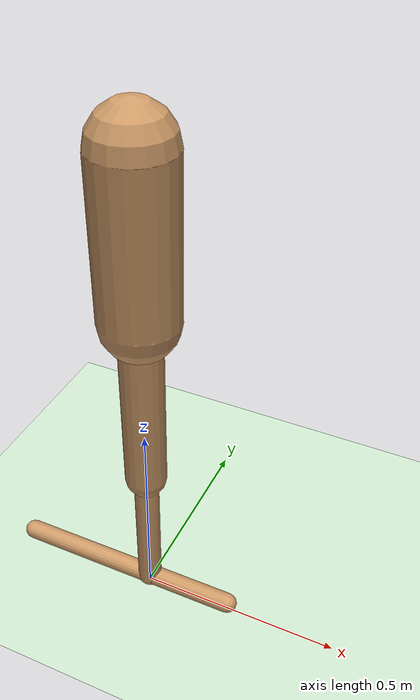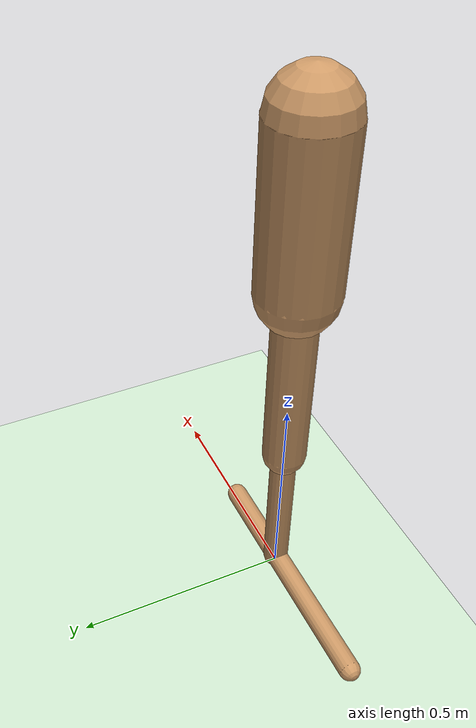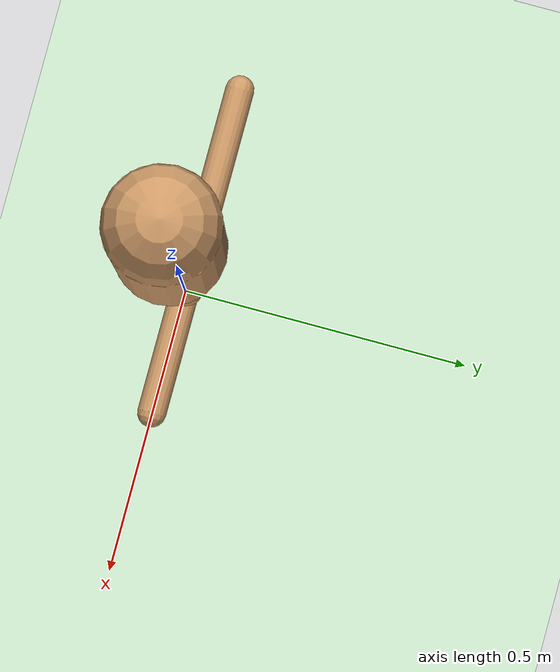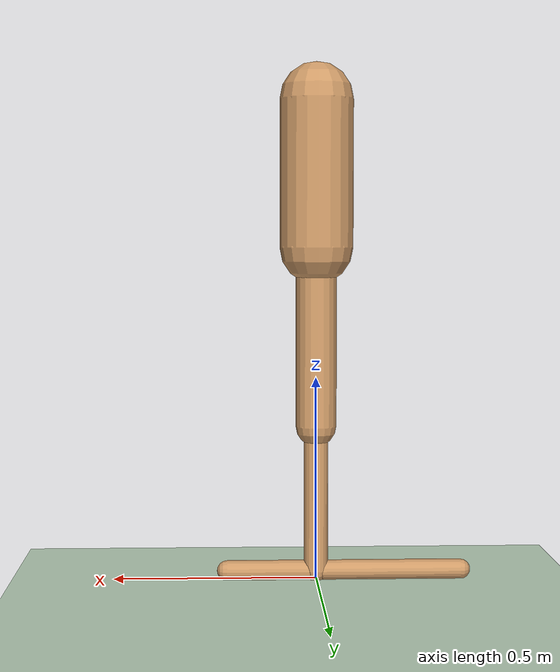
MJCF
<mujoco model="walker2d">
    <compiler angle="degree" inertiafromgeom="true"/>
    <default>
      <joint armature="0.01" damping=".1" limited="true"/>
      <geom conaffinity="0" condim="3" contype="1" density="1000" friction=".7 .1 .1" rgba="0.8 0.6 .4 1"/>
    </default>
    <option integrator="RK4" timestep="0.002"/>
    <worldbody>
      <light cutoff="100" diffuse="1 1 1" dir="-0 0 -1.3" directional="true" exponent="1" pos="0 0 1.3" specular=".1 .1 .1"/>
      <geom conaffinity="1" condim="3" name="floor" pos="0 0 0" rgba="0.8 0.9 0.8 1" size="20 20 .125" type="plane" material="MatPlane"/>
      <body name="torso" pos="0 0 1.18">
        <camera name="track" mode="trackcom" pos="0 -3 -0.25" xyaxes="1 0 0 0 0 1"/>
        <joint armature="0" axis="1 0 0" damping="0" limited="false" name="ignore1" pos="0 0 0" stiffness="0" type="slide"/>
        <joint armature="0" axis="0 0 1" damping="0" limited="false" name="ignore2" pos="0 0 0" ref="1.25" stiffness="0" type="slide"/>
        <joint armature="0" axis="0 1 0" damping="0" limited="false" name="ignore3" pos="0 0 0" stiffness="0" type="hinge"/>
        <geom fromto="0 0 0 0 0 -0.36" name="torso_geom" size="0.09" type="capsule" friction="0.9"/>
        <body name="thigh" pos="0 0 -0.36">
          <joint axis="0 -1 0" name="thigh_joint" pos="0 0 0" range="-150 0" type="hinge"/>
          <geom fromto="0 0 0 0 0 -0.43999999999999995" name="thigh_geom" size="0.05" type="capsule" friction="0.9"/>
          <body name="leg" pos="0 0 -0.43999999999999995">
            <joint axis="0 -1 0" name="leg_joint" pos="0 0 0" range="-150 0" type="hinge"/>
            <geom fromto="0 0 0 0 0 -0.36" name="leg_geom" size="0.03" type="capsule" friction="0.9"/>
            <body name="foot" pos="0 0 -0.36">
              <joint axis="0 -1 0" name="foot_joint" pos="0 0 0" range="-45 45" type="hinge"/>
              <geom fromto="0.22 0 0 -0.36 0 0" name="foot_geom" size="0.025" type="capsule" friction="1.9"/>
            </body>
          </body>
        </body>
        <body name="thigh_left" pos="0 0 -0.36">
          <joint axis="0 -1 0" name="thigh_left_joint" pos="0 0 0" range="-150 0" type="hinge"/>
          <geom fromto="0 0 0 0 0 -0.43999999999999995" name="thigh_left_geom" size="0.05" type="capsule" friction="0.9"/>
          <body name="leg_left" pos="0 0 -0.43999999999999995">
            <joint axis="0 -1 0" name="leg_left_joint" pos="0 0 0" range="-150 0" type="hinge"/>
            <geom fromto="0 0 0 0 0 -0.36" name="leg_left_geom" size="0.03" type="capsule" friction="0.9"/>
            <body name="foot_left" pos="0 0 -0.36">
              <joint axis="0 -1 0" name="foot_left_joint" pos="0 0 0" range="-45 45" type="hinge"/>
              <geom fromto="0.22 0 0 -0.36 0 0" name="foot_left_geom" size="0.025" type="capsule" friction="1.9"/>
            </body>
          </body>
        </body>
      </body>
    </worldbody>

    <actuator>
      <motor ctrllimited="true" ctrlrange="-1.0 1.0" gear="100" joint="thigh_joint"/>
      <motor ctrllimited="true" ctrlrange="-1.0 1.0" gear="100" joint="leg_joint"/>
      <motor ctrllimited="true" ctrlrange="-1.0 1.0" gear="100" joint="foot_joint"/>
      <motor ctrllimited="true" ctrlrange="-1.0 1.0" gear="100" joint="thigh_left_joint"/>
      <motor ctrllimited="true" ctrlrange="-1.0 1.0" gear="100" joint="leg_left_joint"/>
      <motor ctrllimited="true" ctrlrange="-1.0 1.0" gear="100" joint="foot_left_joint"/>
    </actuator>
      <asset>
        <texture type="skybox" builtin="gradient" rgb1=".4 .5 .6" rgb2="0 0 0"
            width="100" height="100"/>
        <texture builtin="flat" height="1278" mark="cross" markrgb="1 1 1" name="texgeom" random="0.01" rgb1="0.8 0.6 0.4" rgb2="0.8 0.6 0.4" type="cube" width="127"/>
        <texture builtin="checker" height="100" name="texplane" rgb1="0 0 0" rgb2="0.8 0.8 0.8" type="2d" width="100"/>
        <material name="MatPlane" reflectance="0.5" shininess="1" specular="1" texrepeat="60 60" texture="texplane"/>
        <material name="geom" texture="texgeom" texuniform="true"/>
      </asset>
  </mujoco>
